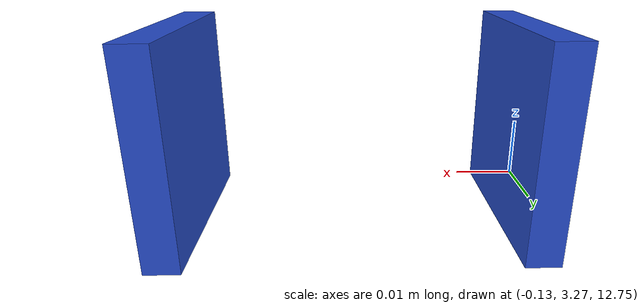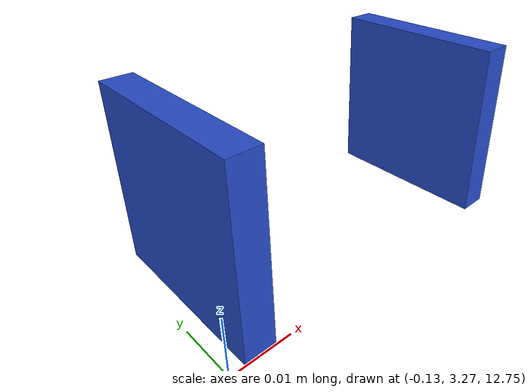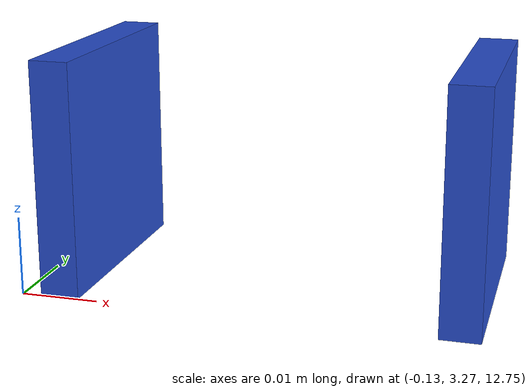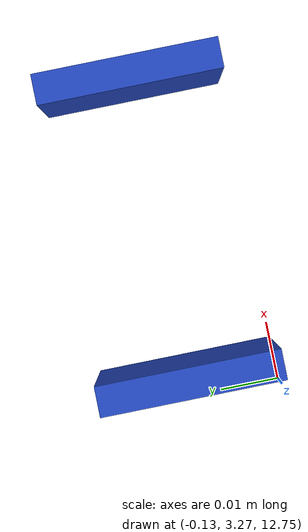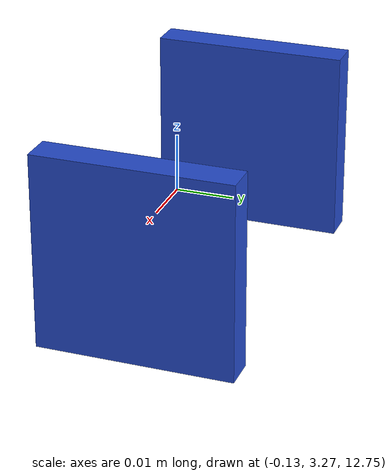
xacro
<?xml version="1.0" ?>
<robot name="${room_name}_optical_sensor" xmlns:xacro="http://ros.org/wiki/xacro" xmlns:xi="http://www.w3.org/2001/XInclude" xmlns:gazebo="http://playerstage.sourceforge.net/gazebo/xmlschema/#gz" xmlns:model="http://playerstage.sourceforge.net/gazebo/xmlschema/#model" xmlns:sensor="http://playerstage.sourceforge.net/gazebo/xmlschema/#sensor" xmlns:body="http://playerstage.sourceforge.net/gazebo/xmlschema/#body" xmlns:geom="http://playerstage.sourceforge.net/gazebo/xmlschema/#geom" xmlns:joint="http://playerstage.sourceforge.net/gazebo/xmlschema/#joint" xmlns:interface="http://playerstage.sourceforge.net/gazebo/xmlschema/#interface" xmlns:rendering="http://playerstage.sourceforge.net/gazebo/xmlschema/#rendering" xmlns:renderable="http://playerstage.sourceforge.net/gazebo/xmlschema/#renderable" xmlns:controller="http://playerstage.sourceforge.net/gazebo/xmlschema/#controller" xmlns:physics="http://playerstage.sourceforge.net/gazebo/xmlschema/#physics">
    <property name="room_name" value="entrance_f1" />
    <property name="x_position" value="4.875" />
    <property name="y_position" value="8.285" />
    <property name="z_position" value="12.765" />
    <property name="x_world_offset" value="-5" />
    <property name="y_world_offset" value="-5" />
    <property name="yaw" value="0" />
    <property name="roll" value="0" />
    <property name="pitch" value="0" />
    <link name="world" />
    <joint name="sensor_joint" type="fixed">
        <origin xyz="${x_position + x_world_offset} ${y_position + y_world_offset} ${z_position}" rpy="${roll} ${pitch} ${yaw}" />
        <parent link="world" />
        <child link="LED" />
    </joint>
    <joint name="LED_PhotoDiode" type="fixed">
        <origin xyz="0.05 0 0" rpy="0 0 0" />
        <parent link="LED" />
        <child link="PhotoDiode" />
    </joint>
    <link name="LED">
        <inertial>
            <mass value="0.1" />
            <inertia ixx="1.0" ixy="0.0" ixz="0.0" iyy="1.0" iyz="0.0" izz="1.0" />
        </inertial>
        <visual>
            <origin xyz="0 0 0" rpy="0 0 0" />
            <geometry>
                <box size="0.005 0.03 0.03" />
            </geometry>
        </visual>
        <collision>
            <geometry>
                <box size="0 0 0" />
            </geometry>
        </collision>
    </link>
    <gazebo reference="LED">
        <sensor:ray name="LED">
            <resRange>0.1</resRange>
            <rayCount>2</rayCount>
            <rangeCount>2</rangeCount>
            <laserCount>1</laserCount>
            <origin>0.0 0.0 0.0</origin>
            <displayRays>true</displayRays>
            <minAngle>-0.0</minAngle>
            <maxAngle>0.0</maxAngle>
            <minRange>0.000001</minRange>
            <maxRange>0.5</maxRange>
            <updateRate>1.0</updateRate>
            <horizontalRayCount>2</horizontalRayCount>
            <horizontalRangeCount>2</horizontalRangeCount>
            <horizontalMinAngle>-0.0</horizontalMinAngle>
            <horizontalMaxAngle>0.0</horizontalMaxAngle>
            <controller:gazebo_ros_laser name="${room_name}_OpticalSensor_controller" plugin="libgazebo_ros_laser.so">
                <gaussianNoise>0.0</gaussianNoise>
                <alwaysOn>true</alwaysOn>
                <updateRate>1.0</updateRate>
                <topicName>${room_name}_ray_range</topicName>
                <frameName>${room_name}_opticalsensor</frameName>
                <robotNamespace>optical_sensor</robotNamespace>
                <interface:laser name="${room_name}_OpticalSensor_iface" />
            </controller:gazebo_ros_laser>
        </sensor:ray>
        <material>Gazebo/Blue</material>
        <turnGravityOff>true</turnGravityOff>
    </gazebo>
    <link name="PhotoDiode">
        <inertial>
            <mass value="0.1" />
            <inertia ixx="1.0" ixy="0.0" ixz="0.0" iyy="1.0" iyz="0.0" izz="1.0" />
        </inertial>
        <visual>
            <origin xyz="0 0 0" rpy="0 0 0" />
            <geometry>
                <box size="0.005 0.03 0.03" />
            </geometry>
        </visual>
        <collision>
            <geometry>
                <box size="0.005 0.03 0.03" />
            </geometry>
        </collision>
    </link>
    <gazebo reference="PhotoDiode">
        <material>Gazebo/Blue</material>
        <turnGravityOff>true</turnGravityOff>
    </gazebo>
</robot>
